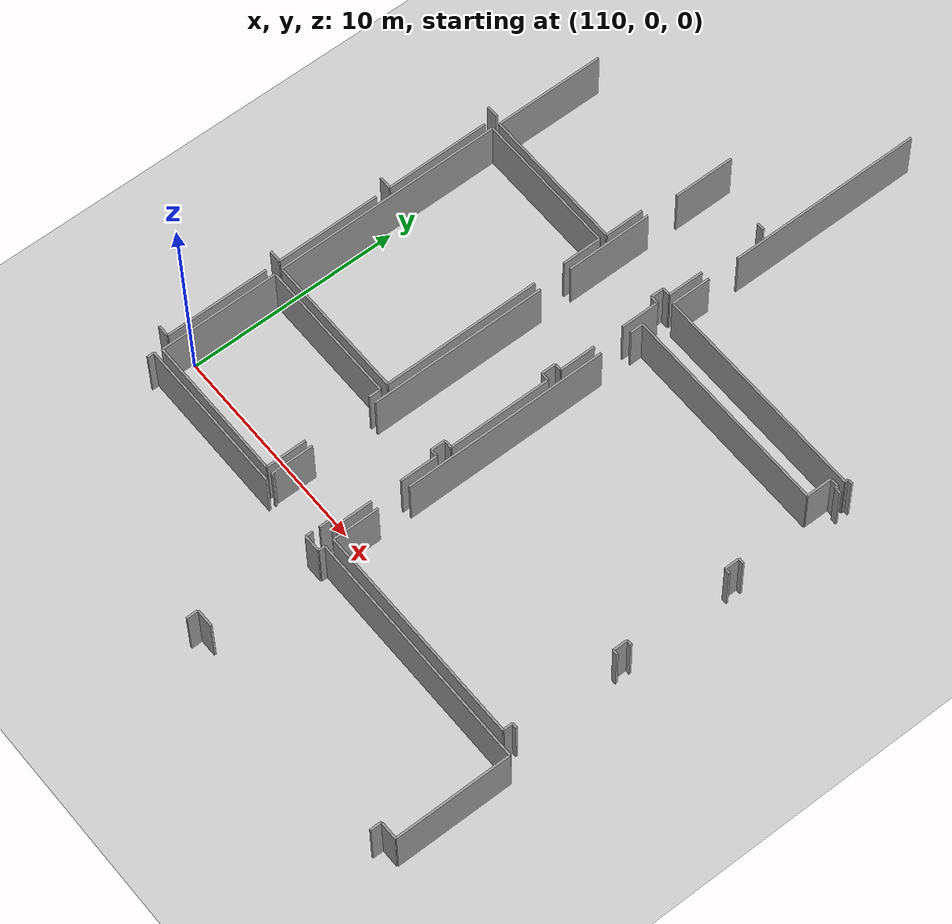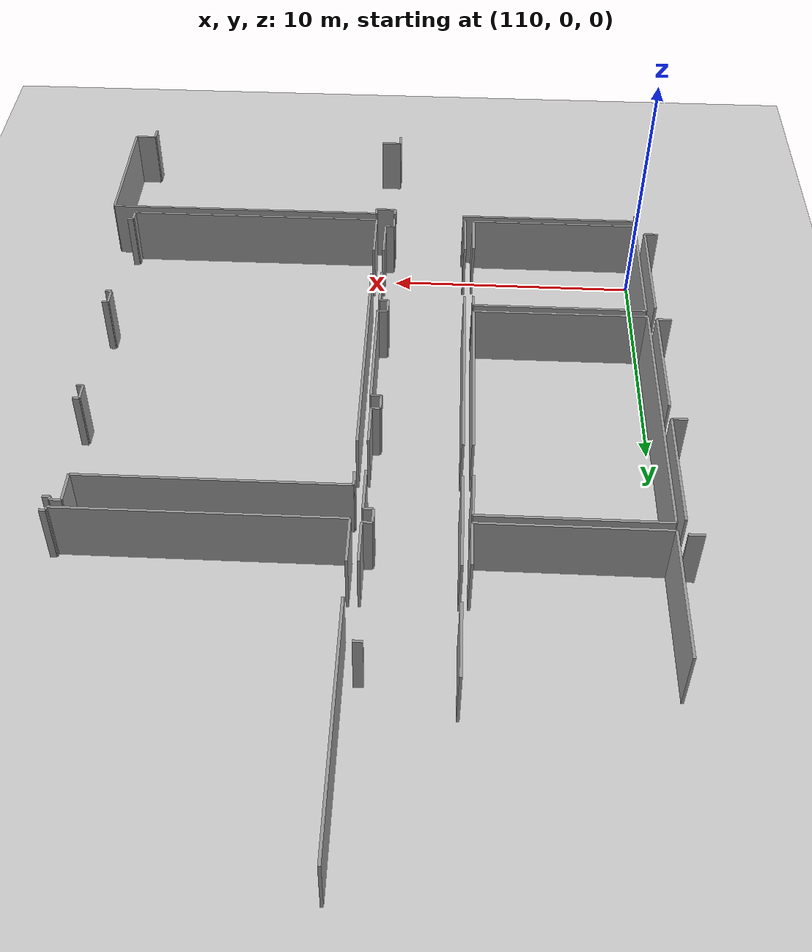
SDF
<sdf version="1.6">
 <world name="default">
  <model name="ground_plane">
   <static>1</static>
   <link name="link">
    <collision name="collision">
     <geometry><plane><normal>0 0 1</normal><size>100 100</size></plane></geometry>
     <surface><friction><ode><mu>100</mu><mu2>50</mu2></ode></friction></surface>
    </collision>
    <visual name="visual">
     <cast_shadows>0</cast_shadows>
     <geometry><plane><normal>0 0 1</normal><size>100 100</size></plane></geometry>
     <material>
      <script><uri>file://media/materials/scripts/gazebo.material</uri><name>Gazebo/Grey</name></script>
     </material>
    </visual>
   </link>
  </model>
  <model name="50015847">
   <static>1</static>
   <link name="Wall_630">
    <collision name="Wall_630_Collision">
     <geometry><box><size>4.94457721056 0.1 2.5</size></box></geometry>
     <pose>2.47228860528 0 1.25 0 0 0</pose>
    </collision>
    <visual name="Wall_630_Visual">
     <pose>2.47228860528 0 1.25 0 0 0</pose>
     <geometry><box><size>4.94457721056 0.1 2.5</size></box></geometry>
     <material>
      <script><uri>file://media/materials/scripts/gazebo.material</uri><name>Gazebo/Grey</name></script>
      <ambient>1 1 1 1</ambient>
     </material>
    </visual>
    <pose>241.810138811 -28.5127370723 0 0 0 -1.57079632679</pose>
   </link>
   <link name="Wall_631">
    <collision name="Wall_631_Collision">
     <geometry><box><size>0.59744750089 0.1 2.5</size></box></geometry>
     <pose>0.298723750445 0 1.25 0 0 0</pose>
    </collision>
    <visual name="Wall_631_Visual">
     <pose>0.298723750445 0 1.25 0 0 0</pose>
     <geometry><box><size>0.59744750089 0.1 2.5</size></box></geometry>
     <material>
      <script><uri>file://media/materials/scripts/gazebo.material</uri><name>Gazebo/Grey</name></script>
      <ambient>1 1 1 1</ambient>
     </material>
    </visual>
    <pose>241.810138811 -33.4573142828 0 0 0 3.14159265359</pose>
   </link>
   <link name="Wall_634">
    <collision name="Wall_634_Collision">
     <geometry><box><size>4.91076422434 0.1 2.5</size></box></geometry>
     <pose>2.45538211217 0 1.25 0 0 0</pose>
    </collision>
    <visual name="Wall_634_Visual">
     <pose>2.45538211217 0 1.25 0 0 0</pose>
     <geometry><box><size>4.91076422434 0.1 2.5</size></box></geometry>
     <material>
      <script><uri>file://media/materials/scripts/gazebo.material</uri><name>Gazebo/Grey</name></script>
      <ambient>1 1 1 1</ambient>
     </material>
    </visual>
    <pose>241.810138811 -34.1645904307 0 0 0 -1.57079632679</pose>
   </link>
   <link name="Wall_635">
    <collision name="Wall_635_Collision">
     <geometry><box><size>0.579651192353 0.1 2.5</size></box></geometry>
     <pose>0.289825596176 0 1.25 0 0 0</pose>
    </collision>
    <visual name="Wall_635_Visual">
     <pose>0.289825596176 0 1.25 0 0 0</pose>
     <geometry><box><size>0.579651192353 0.1 2.5</size></box></geometry>
     <material>
      <script><uri>file://media/materials/scripts/gazebo.material</uri><name>Gazebo/Grey</name></script>
      <ambient>1 1 1 1</ambient>
     </material>
    </visual>
    <pose>241.810138811 -39.075354655 0 0 0 3.14159265359</pose>
   </link>
   <link name="Wall_638">
    <collision name="Wall_638_Collision">
     <geometry><box><size>4.90796766157 0.1 2.5</size></box></geometry>
     <pose>2.45398383078 0 1.25 0 0 0</pose>
    </collision>
    <visual name="Wall_638_Visual">
     <pose>2.45398383078 0 1.25 0 0 0</pose>
     <geometry><box><size>4.90796766157 0.1 2.5</size></box></geometry>
     <material>
      <script><uri>file://media/materials/scripts/gazebo.material</uri><name>Gazebo/Grey</name></script>
      <ambient>1 1 1 1</ambient>
     </material>
    </visual>
    <pose>241.812681141 -39.7602583007 0 0 0 -1.57079632679</pose>
   </link>
   <link name="Wall_639">
    <collision name="Wall_639_Collision">
     <geometry><box><size>0.564397213607 0.1 2.5</size></box></geometry>
     <pose>0.282198606803 0 1.25 0 0 0</pose>
    </collision>
    <visual name="Wall_639_Visual">
     <pose>0.282198606803 0 1.25 0 0 0</pose>
     <geometry><box><size>0.564397213607 0.1 2.5</size></box></geometry>
     <material>
      <script><uri>file://media/materials/scripts/gazebo.material</uri><name>Gazebo/Grey</name></script>
      <ambient>1 1 1 1</ambient>
     </material>
    </visual>
    <pose>241.812681141 -44.6682259623 0 0 0 3.14159265359</pose>
   </link>
   <link name="Wall_713">
    <collision name="Wall_713_Collision">
     <geometry><box><size>0.584735851935 0.1 2.5</size></box></geometry>
     <pose>0.292367925967 0 1.25 0 0 0</pose>
    </collision>
    <visual name="Wall_713_Visual">
     <pose>0.292367925967 0 1.25 0 0 0</pose>
     <geometry><box><size>0.584735851935 0.1 2.5</size></box></geometry>
     <material>
      <script><uri>file://media/materials/scripts/gazebo.material</uri><name>Gazebo/Grey</name></script>
      <ambient>1 1 1 1</ambient>
     </material>
    </visual>
    <pose>241.810138811 -27.8741038287 0 0 0 3.14159265359</pose>
   </link>
   <link name="Wall_739">
    <collision name="Wall_739_Collision">
     <geometry><box><size>5.24279249504 0.1 2.5</size></box></geometry>
     <pose>2.62139624752 0 1.25 0 0 0</pose>
    </collision>
    <visual name="Wall_739_Visual">
     <pose>2.62139624752 0 1.25 0 0 0</pose>
     <geometry><box><size>5.24279249504 0.1 2.5</size></box></geometry>
     <material>
      <script><uri>file://media/materials/scripts/gazebo.material</uri><name>Gazebo/Grey</name></script>
      <ambient>1 1 1 1</ambient>
     </material>
    </visual>
    <pose>242.178776631 -28.0337621396 0 0 0 1.57079632679</pose>
   </link>
   <link name="Wall_742">
    <collision name="Wall_742_Collision">
     <geometry><box><size>1.8528499517 0.1 2.5</size></box></geometry>
     <pose>0.926424975848 0 1.25 0 0 0</pose>
    </collision>
    <visual name="Wall_742_Visual">
     <pose>0.926424975848 0 1.25 0 0 0</pose>
     <geometry><box><size>1.8528499517 0.1 2.5</size></box></geometry>
     <material>
      <script><uri>file://media/materials/scripts/gazebo.material</uri><name>Gazebo/Grey</name></script>
      <ambient>1 1 1 1</ambient>
     </material>
    </visual>
    <pose>249.116794631 -26.1857426145 0 0 0 -1.57079632679</pose>
   </link>
   <link name="Wall_743">
    <collision name="Wall_743_Collision">
     <geometry><box><size>6.93801968123 0.1 2.5</size></box></geometry>
     <pose>3.46900984061 0 1.25 0 0 0</pose>
    </collision>
    <visual name="Wall_743_Visual">
     <pose>3.46900984061 0 1.25 0 0 0</pose>
     <geometry><box><size>6.93801968123 0.1 2.5</size></box></geometry>
     <material>
      <script><uri>file://media/materials/scripts/gazebo.material</uri><name>Gazebo/Grey</name></script>
      <ambient>1 1 1 1</ambient>
     </material>
    </visual>
    <pose>249.116794631 -28.0385925662 0 0 0 3.14089642798</pose>
   </link>
   <link name="Wall_744">
    <collision name="Wall_744_Collision">
     <geometry><box><size>10.8471042864 0.1 2.5</size></box></geometry>
     <pose>5.42355214318 0 1.25 0 0 0</pose>
    </collision>
    <visual name="Wall_744_Visual">
     <pose>5.42355214318 0 1.25 0 0 0</pose>
     <geometry><box><size>10.8471042864 0.1 2.5</size></box></geometry>
     <material>
      <script><uri>file://media/materials/scripts/gazebo.material</uri><name>Gazebo/Grey</name></script>
      <ambient>1 1 1 1</ambient>
     </material>
    </visual>
    <pose>242.160980322 -39.2294198403 0 0 0 1.57079632679</pose>
   </link>
   <link name="Wall_745">
    <collision name="Wall_745_Collision">
     <geometry><box><size>6.92276402095 0.1 2.5</size></box></geometry>
     <pose>3.46138201047 0 1.25 0 0 0</pose>
    </collision>
    <visual name="Wall_745_Visual">
     <pose>3.46138201047 0 1.25 0 0 0</pose>
     <geometry><box><size>6.92276402095 0.1 2.5</size></box></geometry>
     <material>
      <script><uri>file://media/materials/scripts/gazebo.material</uri><name>Gazebo/Grey</name></script>
      <ambient>1 1 1 1</ambient>
     </material>
    </visual>
    <pose>242.160980322 -28.382315554 0 0 0 0.0</pose>
   </link>
   <link name="Wall_746">
    <collision name="Wall_746_Collision">
     <geometry><box><size>1.8673412315 0.1 2.5</size></box></geometry>
     <pose>0.933670615752 0 1.25 0 0 0</pose>
    </collision>
    <visual name="Wall_746_Visual">
     <pose>0.933670615752 0 1.25 0 0 0</pose>
     <geometry><box><size>1.8673412315 0.1 2.5</size></box></geometry>
     <material>
      <script><uri>file://media/materials/scripts/gazebo.material</uri><name>Gazebo/Grey</name></script>
      <ambient>1 1 1 1</ambient>
     </material>
    </visual>
    <pose>249.083744343 -28.382315554 0 0 0 -1.57079632679</pose>
   </link>
   <link name="Wall_747">
    <collision name="Wall_747_Collision">
     <geometry><box><size>7.47266995475 0.1 2.5</size></box></geometry>
     <pose>3.73633497737 0 1.25 0 0 0</pose>
    </collision>
    <visual name="Wall_747_Visual">
     <pose>3.73633497737 0 1.25 0 0 0</pose>
     <geometry><box><size>7.47266995475 0.1 2.5</size></box></geometry>
     <material>
      <script><uri>file://media/materials/scripts/gazebo.material</uri><name>Gazebo/Grey</name></script>
      <ambient>1 1 1 1</ambient>
     </material>
    </visual>
    <pose>249.083744343 -31.7478517313 0 0 0 -1.57079632679</pose>
   </link>
   <link name="Wall_748">
    <collision name="Wall_748_Collision">
     <geometry><box><size>6.92276973955 0.1 2.5</size></box></geometry>
     <pose>3.46138486978 0 1.25 0 0 0</pose>
    </collision>
    <visual name="Wall_748_Visual">
     <pose>3.46138486978 0 1.25 0 0 0</pose>
     <geometry><box><size>6.92276973955 0.1 2.5</size></box></geometry>
     <material>
      <script><uri>file://media/materials/scripts/gazebo.material</uri><name>Gazebo/Grey</name></script>
      <ambient>1 1 1 1</ambient>
     </material>
    </visual>
    <pose>249.083744343 -39.2205216861 0 0 0 -3.14030730725</pose>
   </link>
   <link name="Wall_749">
    <collision name="Wall_749_Collision">
     <geometry><box><size>5.61651497432 0.1 2.5</size></box></geometry>
     <pose>2.80825748716 0 1.25 0 0 0</pose>
    </collision>
    <visual name="Wall_749_Visual">
     <pose>2.80825748716 0 1.25 0 0 0</pose>
     <geometry><box><size>5.61651497432 0.1 2.5</size></box></geometry>
     <material>
      <script><uri>file://media/materials/scripts/gazebo.material</uri><name>Gazebo/Grey</name></script>
      <ambient>1 1 1 1</ambient>
     </material>
    </visual>
    <pose>242.201657599 -45.2051660141 0 0 0 1.57079632679</pose>
   </link>
   <link name="Wall_750">
    <collision name="Wall_750_Collision">
     <geometry><box><size>6.89479839325 0.1 2.5</size></box></geometry>
     <pose>3.44739919662 0 1.25 0 0 0</pose>
    </collision>
    <visual name="Wall_750_Visual">
     <pose>3.44739919662 0 1.25 0 0 0</pose>
     <geometry><box><size>6.89479839325 0.1 2.5</size></box></geometry>
     <material>
      <script><uri>file://media/materials/scripts/gazebo.material</uri><name>Gazebo/Grey</name></script>
      <ambient>1 1 1 1</ambient>
     </material>
    </visual>
    <pose>242.201657599 -39.5886510398 0 0 0 0.0</pose>
   </link>
   <link name="Wall_751">
    <collision name="Wall_751_Collision">
     <geometry><box><size>0.573803833833 0.1 2.5</size></box></geometry>
     <pose>0.286901916917 0 1.25 0 0 0</pose>
    </collision>
    <visual name="Wall_751_Visual">
     <pose>0.286901916917 0 1.25 0 0 0</pose>
     <geometry><box><size>0.573803833833 0.1 2.5</size></box></geometry>
     <material>
      <script><uri>file://media/materials/scripts/gazebo.material</uri><name>Gazebo/Grey</name></script>
      <ambient>1 1 1 1</ambient>
     </material>
    </visual>
    <pose>249.096455992 -39.5886510398 0 0 0 -1.57079632679</pose>
   </link>
   <link name="Wall_752">
    <collision name="Wall_752_Collision">
     <geometry><box><size>1.90674734327 0.1 2.5</size></box></geometry>
     <pose>0.953373671633 0 1.25 0 0 0</pose>
    </collision>
    <visual name="Wall_752_Visual">
     <pose>0.953373671633 0 1.25 0 0 0</pose>
     <geometry><box><size>1.90674734327 0.1 2.5</size></box></geometry>
     <material>
      <script><uri>file://media/materials/scripts/gazebo.material</uri><name>Gazebo/Grey</name></script>
      <ambient>1 1 1 1</ambient>
     </material>
    </visual>
    <pose>249.096455992 -43.3118930188 0 0 0 -1.57079632679</pose>
   </link>
   <link name="Wall_753">
    <collision name="Wall_753_Collision">
     <geometry><box><size>6.89481155954 0.1 2.5</size></box></geometry>
     <pose>3.44740577977 0 1.25 0 0 0</pose>
    </collision>
    <visual name="Wall_753_Visual">
     <pose>3.44740577977 0 1.25 0 0 0</pose>
     <geometry><box><size>6.89481155954 0.1 2.5</size></box></geometry>
     <material>
      <script><uri>file://media/materials/scripts/gazebo.material</uri><name>Gazebo/Grey</name></script>
      <ambient>1 1 1 1</ambient>
     </material>
    </visual>
    <pose>249.096455992 -45.218640362 0 0 0 3.13963837879</pose>
   </link>
   <link name="Wall_754">
    <collision name="Wall_754_Collision">
     <geometry><box><size>10.0803376214 0.1 2.5</size></box></geometry>
     <pose>5.0401688107 0 1.25 0 0 0</pose>
    </collision>
    <visual name="Wall_754_Visual">
     <pose>5.0401688107 0 1.25 0 0 0</pose>
     <geometry><box><size>10.0803376214 0.1 2.5</size></box></geometry>
     <material>
      <script><uri>file://media/materials/scripts/gazebo.material</uri><name>Gazebo/Grey</name></script>
      <ambient>1 1 1 1</ambient>
     </material>
    </visual>
    <pose>253.270961509 -29.5883968068 0 0 0 0.0</pose>
   </link>
   <link name="Wall_755">
    <collision name="Wall_755_Collision">
     <geometry><box><size>1.21574210607 0.1 2.5</size></box></geometry>
     <pose>0.607871053033 0 1.25 0 0 0</pose>
    </collision>
    <visual name="Wall_755_Visual">
     <pose>0.607871053033 0 1.25 0 0 0</pose>
     <geometry><box><size>1.21574210607 0.1 2.5</size></box></geometry>
     <material>
      <script><uri>file://media/materials/scripts/gazebo.material</uri><name>Gazebo/Grey</name></script>
      <ambient>1 1 1 1</ambient>
     </material>
    </visual>
    <pose>263.351299131 -29.5883968068 0 0 0 1.57079632679</pose>
   </link>
   <link name="Wall_756">
    <collision name="Wall_756_Collision">
     <geometry><box><size>0.422026745309 0.1 2.5</size></box></geometry>
     <pose>0.211013372655 0 1.25 0 0 0</pose>
    </collision>
    <visual name="Wall_756_Visual">
     <pose>0.211013372655 0 1.25 0 0 0</pose>
     <geometry><box><size>0.422026745309 0.1 2.5</size></box></geometry>
     <material>
      <script><uri>file://media/materials/scripts/gazebo.material</uri><name>Gazebo/Grey</name></script>
      <ambient>1 1 1 1</ambient>
     </material>
    </visual>
    <pose>263.351299131 -28.3726547008 0 0 0 0.0</pose>
   </link>
   <link name="Wall_757">
    <collision name="Wall_757_Collision">
     <geometry><box><size>0.133726547008 0.1 2.5</size></box></geometry>
     <pose>0.0668632735038 0 1.25 0 0 0</pose>
    </collision>
    <visual name="Wall_757_Visual">
     <pose>0.0668632735038 0 1.25 0 0 0</pose>
     <geometry><box><size>0.133726547008 0.1 2.5</size></box></geometry>
     <material>
      <script><uri>file://media/materials/scripts/gazebo.material</uri><name>Gazebo/Grey</name></script>
      <ambient>1 1 1 1</ambient>
     </material>
    </visual>
    <pose>263.773325876 -28.3726547008 0 0 0 -1.57079632679</pose>
   </link>
   <link name="Wall_758">
    <collision name="Wall_758_Collision">
     <geometry><box><size>0.287283266385 0.1 2.5</size></box></geometry>
     <pose>0.143641633193 0 1.25 0 0 0</pose>
    </collision>
    <visual name="Wall_758_Visual">
     <pose>0.143641633193 0 1.25 0 0 0</pose>
     <geometry><box><size>0.287283266385 0.1 2.5</size></box></geometry>
     <material>
      <script><uri>file://media/materials/scripts/gazebo.material</uri><name>Gazebo/Grey</name></script>
      <ambient>1 1 1 1</ambient>
     </material>
    </visual>
    <pose>263.773325876 -28.5063812478 0 0 0 0.0</pose>
   </link>
   <link name="Wall_759">
    <collision name="Wall_759_Collision">
     <geometry><box><size>0.264402298266 0.1 2.5</size></box></geometry>
     <pose>0.132201149133 0 1.25 0 0 0</pose>
    </collision>
    <visual name="Wall_759_Visual">
     <pose>0.132201149133 0 1.25 0 0 0</pose>
     <geometry><box><size>0.264402298266 0.1 2.5</size></box></geometry>
     <material>
      <script><uri>file://media/materials/scripts/gazebo.material</uri><name>Gazebo/Grey</name></script>
      <ambient>1 1 1 1</ambient>
     </material>
    </visual>
    <pose>264.060609142 -33.4570600498 0 0 0 3.14159265359</pose>
   </link>
   <link name="Wall_760">
    <collision name="Wall_760_Collision">
     <geometry><box><size>0.697615294656 0.1 2.5</size></box></geometry>
     <pose>0.348807647328 0 1.25 0 0 0</pose>
    </collision>
    <visual name="Wall_760_Visual">
     <pose>0.348807647328 0 1.25 0 0 0</pose>
     <geometry><box><size>0.697615294656 0.1 2.5</size></box></geometry>
     <material>
      <script><uri>file://media/materials/scripts/gazebo.material</uri><name>Gazebo/Grey</name></script>
      <ambient>1 1 1 1</ambient>
     </material>
    </visual>
    <pose>263.796206844 -33.4570600498 0 0 0 -1.57079632679</pose>
   </link>
   <link name="Wall_761">
    <collision name="Wall_761_Collision">
     <geometry><box><size>0.256775308893 0.1 2.5</size></box></geometry>
     <pose>0.128387654447 0 1.25 0 0 0</pose>
    </collision>
    <visual name="Wall_761_Visual">
     <pose>0.128387654447 0 1.25 0 0 0</pose>
     <geometry><box><size>0.256775308893 0.1 2.5</size></box></geometry>
     <material>
      <script><uri>file://media/materials/scripts/gazebo.material</uri><name>Gazebo/Grey</name></script>
      <ambient>1 1 1 1</ambient>
     </material>
    </visual>
    <pose>263.796206844 -34.1546753445 0 0 0 0.0</pose>
   </link>
   <link name="Wall_762">
    <collision name="Wall_762_Collision">
     <geometry><box><size>0.246605989729 0.1 2.5</size></box></geometry>
     <pose>0.123302994865 0 1.25 0 0 0</pose>
    </collision>
    <visual name="Wall_762_Visual">
     <pose>0.123302994865 0 1.25 0 0 0</pose>
     <geometry><box><size>0.246605989729 0.1 2.5</size></box></geometry>
     <material>
      <script><uri>file://media/materials/scripts/gazebo.material</uri><name>Gazebo/Grey</name></script>
      <ambient>1 1 1 1</ambient>
     </material>
    </visual>
    <pose>264.052982153 -39.0654395688 0 0 0 3.14159265359</pose>
   </link>
   <link name="Wall_763">
    <collision name="Wall_763_Collision">
     <geometry><box><size>0.682615548889 0.1 2.5</size></box></geometry>
     <pose>0.341307774445 0 1.25 0 0 0</pose>
    </collision>
    <visual name="Wall_763_Visual">
     <pose>0.341307774445 0 1.25 0 0 0</pose>
     <geometry><box><size>0.682615548889 0.1 2.5</size></box></geometry>
     <material>
      <script><uri>file://media/materials/scripts/gazebo.material</uri><name>Gazebo/Grey</name></script>
      <ambient>1 1 1 1</ambient>
     </material>
    </visual>
    <pose>263.806376163 -39.0654395688 0 0 0 -1.57079632679</pose>
   </link>
   <link name="Wall_764">
    <collision name="Wall_764_Collision">
     <geometry><box><size>0.241521330147 0.1 2.5</size></box></geometry>
     <pose>0.120760665073 0 1.25 0 0 0</pose>
    </collision>
    <visual name="Wall_764_Visual">
     <pose>0.120760665073 0 1.25 0 0 0</pose>
     <geometry><box><size>0.241521330147 0.1 2.5</size></box></geometry>
     <material>
      <script><uri>file://media/materials/scripts/gazebo.material</uri><name>Gazebo/Grey</name></script>
      <ambient>1 1 1 1</ambient>
     </material>
    </visual>
    <pose>263.806376163 -39.7480551177 0 0 0 0.0</pose>
   </link>
   <link name="Wall_765">
    <collision name="Wall_765_Collision">
     <geometry><box><size>0.244063659938 0.1 2.5</size></box></geometry>
     <pose>0.122031829969 0 1.25 0 0 0</pose>
    </collision>
    <visual name="Wall_765_Visual">
     <pose>0.122031829969 0 1.25 0 0 0</pose>
     <geometry><box><size>0.244063659938 0.1 2.5</size></box></geometry>
     <material>
      <script><uri>file://media/materials/scripts/gazebo.material</uri><name>Gazebo/Grey</name></script>
      <ambient>1 1 1 1</ambient>
     </material>
    </visual>
    <pose>264.047897493 -44.6768698836 0 0 0 3.14159265359</pose>
   </link>
   <link name="Wall_766">
    <collision name="Wall_766_Collision">
     <geometry><box><size>0.455077032593 0.1 2.5</size></box></geometry>
     <pose>0.227538516296 0 1.25 0 0 0</pose>
    </collision>
    <visual name="Wall_766_Visual">
     <pose>0.227538516296 0 1.25 0 0 0</pose>
     <geometry><box><size>0.455077032593 0.1 2.5</size></box></geometry>
     <material>
      <script><uri>file://media/materials/scripts/gazebo.material</uri><name>Gazebo/Grey</name></script>
      <ambient>1 1 1 1</ambient>
     </material>
    </visual>
    <pose>263.803833833 -44.6768698836 0 0 0 -1.57079632679</pose>
   </link>
   <link name="Wall_767">
    <collision name="Wall_767_Collision">
     <geometry><box><size>10.5150760157 0.1 2.5</size></box></geometry>
     <pose>5.25753800783 0 1.25 0 0 0</pose>
    </collision>
    <visual name="Wall_767_Visual">
     <pose>5.25753800783 0 1.25 0 0 0</pose>
     <geometry><box><size>10.5150760157 0.1 2.5</size></box></geometry>
     <material>
      <script><uri>file://media/materials/scripts/gazebo.material</uri><name>Gazebo/Grey</name></script>
      <ambient>1 1 1 1</ambient>
     </material>
    </visual>
    <pose>263.803833833 -45.1319469162 0 0 0 3.14159265359</pose>
   </link>
   <link name="Wall_768">
    <collision name="Wall_768_Collision">
     <geometry><box><size>2.16809884578 0.1 2.5</size></box></geometry>
     <pose>1.08404942289 0 1.25 0 0 0</pose>
    </collision>
    <visual name="Wall_768_Visual">
     <pose>1.08404942289 0 1.25 0 0 0</pose>
     <geometry><box><size>2.16809884578 0.1 2.5</size></box></geometry>
     <material>
      <script><uri>file://media/materials/scripts/gazebo.material</uri><name>Gazebo/Grey</name></script>
      <ambient>1 1 1 1</ambient>
     </material>
    </visual>
    <pose>253.288757818 -45.1319469162 0 0 0 1.57079632679</pose>
   </link>
   <link name="Wall_769">
    <collision name="Wall_769_Collision">
     <geometry><box><size>9.69314079422 0.1 2.5</size></box></geometry>
     <pose>4.84657039711 0 1.25 0 0 0</pose>
    </collision>
    <visual name="Wall_769_Visual">
     <pose>4.84657039711 0 1.25 0 0 0</pose>
     <geometry><box><size>9.69314079422 0.1 2.5</size></box></geometry>
     <material>
      <script><uri>file://media/materials/scripts/gazebo.material</uri><name>Gazebo/Grey</name></script>
      <ambient>1 1 1 1</ambient>
     </material>
    </visual>
    <pose>253.288757818 -41.4206538872 0 0 0 1.57079632679</pose>
   </link>
   <link name="Wall_770">
    <collision name="Wall_770_Collision">
     <geometry><box><size>0.638881153507 0.1 2.5</size></box></geometry>
     <pose>0.319440576753 0 1.25 0 0 0</pose>
    </collision>
    <visual name="Wall_770_Visual">
     <pose>0.319440576753 0 1.25 0 0 0</pose>
     <geometry><box><size>0.638881153507 0.1 2.5</size></box></geometry>
     <material>
      <script><uri>file://media/materials/scripts/gazebo.material</uri><name>Gazebo/Grey</name></script>
      <ambient>1 1 1 1</ambient>
     </material>
    </visual>
    <pose>253.288757818 -30.2270300503 0 0 0 1.59865535922</pose>
   </link>
   <link name="Wall_783">
    <collision name="Wall_783_Collision">
     <geometry><box><size>0.236436670565 0.1 2.5</size></box></geometry>
     <pose>0.118218335282 0 1.25 0 0 0</pose>
    </collision>
    <visual name="Wall_783_Visual">
     <pose>0.118218335282 0 1.25 0 0 0</pose>
     <geometry><box><size>0.236436670565 0.1 2.5</size></box></geometry>
     <material>
      <script><uri>file://media/materials/scripts/gazebo.material</uri><name>Gazebo/Grey</name></script>
      <ambient>1 1 1 1</ambient>
     </material>
    </visual>
    <pose>264.035185844 -27.8802054202 0 0 0 3.14159265359</pose>
   </link>
   <link name="Wall_784">
    <collision name="Wall_784_Collision">
     <geometry><box><size>0.152031321503 0.1 2.5</size></box></geometry>
     <pose>0.0760156607515 0 1.25 0 0 0</pose>
    </collision>
    <visual name="Wall_784_Visual">
     <pose>0.0760156607515 0 1.25 0 0 0</pose>
     <geometry><box><size>0.152031321503 0.1 2.5</size></box></geometry>
     <material>
      <script><uri>file://media/materials/scripts/gazebo.material</uri><name>Gazebo/Grey</name></script>
      <ambient>1 1 1 1</ambient>
     </material>
    </visual>
    <pose>263.798749174 -27.8802054202 0 0 0 -1.57079632679</pose>
   </link>
   <link name="Wall_785">
    <collision name="Wall_785_Collision">
     <geometry><box><size>10.4972797071 0.1 2.5</size></box></geometry>
     <pose>5.24863985356 0 1.25 0 0 0</pose>
    </collision>
    <visual name="Wall_785_Visual">
     <pose>5.24863985356 0 1.25 0 0 0</pose>
     <geometry><box><size>10.4972797071 0.1 2.5</size></box></geometry>
     <material>
      <script><uri>file://media/materials/scripts/gazebo.material</uri><name>Gazebo/Grey</name></script>
      <ambient>1 1 1 1</ambient>
     </material>
    </visual>
    <pose>263.798749174 -28.0322367418 0 0 0 3.14159265359</pose>
   </link>
   <link name="Wall_786">
    <collision name="Wall_786_Collision">
     <geometry><box><size>1.88157827833 0.1 2.5</size></box></geometry>
     <pose>0.940789139167 0 1.25 0 0 0</pose>
    </collision>
    <visual name="Wall_786_Visual">
     <pose>0.940789139167 0 1.25 0 0 0</pose>
     <geometry><box><size>1.88157827833 0.1 2.5</size></box></geometry>
     <material>
      <script><uri>file://media/materials/scripts/gazebo.material</uri><name>Gazebo/Grey</name></script>
      <ambient>1 1 1 1</ambient>
     </material>
    </visual>
    <pose>253.301469467 -28.0322367418 0 0 0 1.57079632679</pose>
   </link>
   <link name="Wall_787">
    <collision name="Wall_787_Collision">
     <geometry><box><size>9.31560482026 0.1 2.5</size></box></geometry>
     <pose>4.65780241013 0 1.25 0 0 0</pose>
    </collision>
    <visual name="Wall_787_Visual">
     <pose>4.65780241013 0 1.25 0 0 0</pose>
     <geometry><box><size>9.31560482026 0.1 2.5</size></box></geometry>
     <material>
      <script><uri>file://media/materials/scripts/gazebo.material</uri><name>Gazebo/Grey</name></script>
      <ambient>1 1 1 1</ambient>
     </material>
    </visual>
    <pose>253.301469467 -24.6389891697 0 0 0 1.57079632679</pose>
   </link>
   <link name="Wall_817">
    <collision name="Wall_817_Collision">
     <geometry><box><size>0.355926170743 0.1 2.5</size></box></geometry>
     <pose>0.177963085371 0 1.25 0 0 0</pose>
    </collision>
    <visual name="Wall_817_Visual">
     <pose>0.177963085371 0 1.25 0 0 0</pose>
     <geometry><box><size>0.355926170743 0.1 2.5</size></box></geometry>
     <material>
      <script><uri>file://media/materials/scripts/gazebo.material</uri><name>Gazebo/Grey</name></script>
      <ambient>1 1 1 1</ambient>
     </material>
    </visual>
    <pose>252.538770529 -22.919357299 0 0 0 0.0</pose>
   </link>
   <link name="Wall_819">
    <collision name="Wall_819_Collision">
     <geometry><box><size>1.70361519296 0.1 2.5</size></box></geometry>
     <pose>0.851807596481 0 1.25 0 0 0</pose>
    </collision>
    <visual name="Wall_819_Visual">
     <pose>0.851807596481 0 1.25 0 0 0</pose>
     <geometry><box><size>1.70361519296 0.1 2.5</size></box></geometry>
     <material>
      <script><uri>file://media/materials/scripts/gazebo.material</uri><name>Gazebo/Grey</name></script>
      <ambient>1 1 1 1</ambient>
     </material>
    </visual>
    <pose>252.8946967 -26.1773529262 0 0 0 -1.57079632679</pose>
   </link>
   <link name="Wall_820">
    <collision name="Wall_820_Collision">
     <geometry><box><size>0.378807138862 0.1 2.5</size></box></geometry>
     <pose>0.189403569431 0 1.25 0 0 0</pose>
    </collision>
    <visual name="Wall_820_Visual">
     <pose>0.189403569431 0 1.25 0 0 0</pose>
     <geometry><box><size>0.378807138862 0.1 2.5</size></box></geometry>
     <material>
      <script><uri>file://media/materials/scripts/gazebo.material</uri><name>Gazebo/Grey</name></script>
      <ambient>1 1 1 1</ambient>
     </material>
    </visual>
    <pose>252.8946967 -27.8809681192 0 0 0 3.14159265359</pose>
   </link>
   <link name="Wall_821">
    <collision name="Wall_821_Collision">
     <geometry><box><size>0.615243809427 0.1 2.5</size></box></geometry>
     <pose>0.307621904713 0 1.25 0 0 0</pose>
    </collision>
    <visual name="Wall_821_Visual">
     <pose>0.307621904713 0 1.25 0 0 0</pose>
     <geometry><box><size>0.615243809427 0.1 2.5</size></box></geometry>
     <material>
      <script><uri>file://media/materials/scripts/gazebo.material</uri><name>Gazebo/Grey</name></script>
      <ambient>1 1 1 1</ambient>
     </material>
    </visual>
    <pose>252.515889561 -27.8809681192 0 0 0 -1.57079632679</pose>
   </link>
   <link name="Wall_822">
    <collision name="Wall_822_Collision">
     <geometry><box><size>0.363553160116 0.1 2.5</size></box></geometry>
     <pose>0.181776580058 0 1.25 0 0 0</pose>
    </collision>
    <visual name="Wall_822_Visual">
     <pose>0.181776580058 0 1.25 0 0 0</pose>
     <geometry><box><size>0.363553160116 0.1 2.5</size></box></geometry>
     <material>
      <script><uri>file://media/materials/scripts/gazebo.material</uri><name>Gazebo/Grey</name></script>
      <ambient>1 1 1 1</ambient>
     </material>
    </visual>
    <pose>252.515889561 -28.4962119286 0 0 0 0.0</pose>
   </link>
   <link name="Wall_823">
    <collision name="Wall_823_Collision">
     <geometry><box><size>1.80556261758 0.1 2.5</size></box></geometry>
     <pose>0.902781308791 0 1.25 0 0 0</pose>
    </collision>
    <visual name="Wall_823_Visual">
     <pose>0.902781308791 0 1.25 0 0 0</pose>
     <geometry><box><size>1.80556261758 0.1 2.5</size></box></geometry>
     <material>
      <script><uri>file://media/materials/scripts/gazebo.material</uri><name>Gazebo/Grey</name></script>
      <ambient>1 1 1 1</ambient>
     </material>
    </visual>
    <pose>252.879442721 -28.4962119286 0 0 0 -1.57079632679</pose>
   </link>
   <link name="Wall_824">
    <collision name="Wall_824_Collision">
     <geometry><box><size>1.70361519296 0.1 2.5</size></box></geometry>
     <pose>0.851807596481 0 1.25 0 0 0</pose>
    </collision>
    <visual name="Wall_824_Visual">
     <pose>0.851807596481 0 1.25 0 0 0</pose>
     <geometry><box><size>1.70361519296 0.1 2.5</size></box></geometry>
     <material>
      <script><uri>file://media/materials/scripts/gazebo.material</uri><name>Gazebo/Grey</name></script>
      <ambient>1 1 1 1</ambient>
     </material>
    </visual>
    <pose>252.879442721 -31.7707326994 0 0 0 -1.57079632679</pose>
   </link>
   <link name="Wall_825">
    <collision name="Wall_825_Collision">
     <geometry><box><size>0.340672191997 0.1 2.5</size></box></geometry>
     <pose>0.170336095998 0 1.25 0 0 0</pose>
    </collision>
    <visual name="Wall_825_Visual">
     <pose>0.170336095998 0 1.25 0 0 0</pose>
     <geometry><box><size>0.340672191997 0.1 2.5</size></box></geometry>
     <material>
      <script><uri>file://media/materials/scripts/gazebo.material</uri><name>Gazebo/Grey</name></script>
      <ambient>1 1 1 1</ambient>
     </material>
    </visual>
    <pose>252.879442721 -33.4743478924 0 0 0 3.14159265359</pose>
   </link>
   <link name="Wall_826">
    <collision name="Wall_826_Collision">
     <geometry><box><size>0.681598616973 0.1 2.5</size></box></geometry>
     <pose>0.340799308486 0 1.25 0 0 0</pose>
    </collision>
    <visual name="Wall_826_Visual">
     <pose>0.340799308486 0 1.25 0 0 0</pose>
     <geometry><box><size>0.681598616973 0.1 2.5</size></box></geometry>
     <material>
      <script><uri>file://media/materials/scripts/gazebo.material</uri><name>Gazebo/Grey</name></script>
      <ambient>1 1 1 1</ambient>
     </material>
    </visual>
    <pose>252.538770529 -33.4743478924 0 0 0 -1.57079632679</pose>
   </link>
   <link name="Wall_827">
    <collision name="Wall_827_Collision">
     <geometry><box><size>0.383891798444 0.1 2.5</size></box></geometry>
     <pose>0.191945899222 0 1.25 0 0 0</pose>
    </collision>
    <visual name="Wall_827_Visual">
     <pose>0.191945899222 0 1.25 0 0 0</pose>
     <geometry><box><size>0.383891798444 0.1 2.5</size></box></geometry>
     <material>
      <script><uri>file://media/materials/scripts/gazebo.material</uri><name>Gazebo/Grey</name></script>
      <ambient>1 1 1 1</ambient>
     </material>
    </visual>
    <pose>252.538770529 -34.1559465094 0 0 0 0.0</pose>
   </link>
   <link name="Wall_828">
    <collision name="Wall_828_Collision">
     <geometry><box><size>4.89423908069 0.1 2.5</size></box></geometry>
     <pose>2.44711954035 0 1.25 0 0 0</pose>
    </collision>
    <visual name="Wall_828_Visual">
     <pose>2.44711954035 0 1.25 0 0 0</pose>
     <geometry><box><size>4.89423908069 0.1 2.5</size></box></geometry>
     <material>
      <script><uri>file://media/materials/scripts/gazebo.material</uri><name>Gazebo/Grey</name></script>
      <ambient>1 1 1 1</ambient>
     </material>
    </visual>
    <pose>252.922662328 -34.1559465094 0 0 0 -1.57079632679</pose>
   </link>
   <link name="Wall_829">
    <collision name="Wall_829_Collision">
     <geometry><box><size>0.388976458026 0.1 2.5</size></box></geometry>
     <pose>0.194488229013 0 1.25 0 0 0</pose>
    </collision>
    <visual name="Wall_829_Visual">
     <pose>0.194488229013 0 1.25 0 0 0</pose>
     <geometry><box><size>0.388976458026 0.1 2.5</size></box></geometry>
     <material>
      <script><uri>file://media/materials/scripts/gazebo.material</uri><name>Gazebo/Grey</name></script>
      <ambient>1 1 1 1</ambient>
     </material>
    </visual>
    <pose>252.922662328 -39.0501855901 0 0 0 3.14159265359</pose>
   </link>
   <link name="Wall_830">
    <collision name="Wall_830_Collision">
     <geometry><box><size>0.684903645701 0.1 2.5</size></box></geometry>
     <pose>0.34245182285 0 1.25 0 0 0</pose>
    </collision>
    <visual name="Wall_830_Visual">
     <pose>0.34245182285 0 1.25 0 0 0</pose>
     <geometry><box><size>0.684903645701 0.1 2.5</size></box></geometry>
     <material>
      <script><uri>file://media/materials/scripts/gazebo.material</uri><name>Gazebo/Grey</name></script>
      <ambient>1 1 1 1</ambient>
     </material>
    </visual>
    <pose>252.53368587 -39.0501855901 0 0 0 -1.57079632679</pose>
   </link>
   <link name="Wall_831">
    <collision name="Wall_831_Collision">
     <geometry><box><size>0.345756851579 0.1 2.5</size></box></geometry>
     <pose>0.172878425789 0 1.25 0 0 0</pose>
    </collision>
    <visual name="Wall_831_Visual">
     <pose>0.172878425789 0 1.25 0 0 0</pose>
     <geometry><box><size>0.345756851579 0.1 2.5</size></box></geometry>
     <material>
      <script><uri>file://media/materials/scripts/gazebo.material</uri><name>Gazebo/Grey</name></script>
      <ambient>1 1 1 1</ambient>
     </material>
    </visual>
    <pose>252.53368587 -39.7350892358 0 0 0 0.0</pose>
   </link>
   <link name="Wall_832">
    <collision name="Wall_832_Collision">
     <geometry><box><size>1.77886815478 0.1 2.5</size></box></geometry>
     <pose>0.889434077389 0 1.25 0 0 0</pose>
    </collision>
    <visual name="Wall_832_Visual">
     <pose>0.889434077389 0 1.25 0 0 0</pose>
     <geometry><box><size>1.77886815478 0.1 2.5</size></box></geometry>
     <material>
      <script><uri>file://media/materials/scripts/gazebo.material</uri><name>Gazebo/Grey</name></script>
      <ambient>1 1 1 1</ambient>
     </material>
    </visual>
    <pose>252.879442721 -39.7350892358 0 0 0 -1.57079632679</pose>
   </link>
   <link name="Wall_833">
    <collision name="Wall_833_Collision">
     <geometry><box><size>1.69853053338 0.1 2.5</size></box></geometry>
     <pose>0.84926526669 0 1.25 0 0 0</pose>
    </collision>
    <visual name="Wall_833_Visual">
     <pose>0.84926526669 0 1.25 0 0 0</pose>
     <geometry><box><size>1.69853053338 0.1 2.5</size></box></geometry>
     <material>
      <script><uri>file://media/materials/scripts/gazebo.material</uri><name>Gazebo/Grey</name></script>
      <ambient>1 1 1 1</ambient>
     </material>
    </visual>
    <pose>252.879442721 -42.9783393502 0 0 0 -1.57079632679</pose>
   </link>
   <link name="Wall_834">
    <collision name="Wall_834_Collision">
     <geometry><box><size>0.358468500534 0.1 2.5</size></box></geometry>
     <pose>0.179234250267 0 1.25 0 0 0</pose>
    </collision>
    <visual name="Wall_834_Visual">
     <pose>0.179234250267 0 1.25 0 0 0</pose>
     <geometry><box><size>0.358468500534 0.1 2.5</size></box></geometry>
     <material>
      <script><uri>file://media/materials/scripts/gazebo.material</uri><name>Gazebo/Grey</name></script>
      <ambient>1 1 1 1</ambient>
     </material>
    </visual>
    <pose>252.879442721 -44.6768698836 0 0 0 3.14159265359</pose>
   </link>
   <link name="Wall_835">
    <collision name="Wall_835_Collision">
     <geometry><box><size>0.561600650836 0.1 2.5</size></box></geometry>
     <pose>0.280800325418 0 1.25 0 0 0</pose>
    </collision>
    <visual name="Wall_835_Visual">
     <pose>0.280800325418 0 1.25 0 0 0</pose>
     <geometry><box><size>0.561600650836 0.1 2.5</size></box></geometry>
     <material>
      <script><uri>file://media/materials/scripts/gazebo.material</uri><name>Gazebo/Grey</name></script>
      <ambient>1 1 1 1</ambient>
     </material>
    </visual>
    <pose>252.520974221 -44.6768698836 0 0 0 -1.57079632679</pose>
   </link>
   <link name="Wall_836">
    <collision name="Wall_836_Collision">
     <geometry><box><size>0.114404840596 0.1 2.5</size></box></geometry>
     <pose>0.057202420298 0 1.25 0 0 0</pose>
    </collision>
    <visual name="Wall_836_Visual">
     <pose>0.057202420298 0 1.25 0 0 0</pose>
     <geometry><box><size>0.114404840596 0.1 2.5</size></box></geometry>
     <material>
      <script><uri>file://media/materials/scripts/gazebo.material</uri><name>Gazebo/Grey</name></script>
      <ambient>1 1 1 1</ambient>
     </material>
    </visual>
    <pose>249.566787004 -45.2384705344 0 0 0 3.14159265359</pose>
   </link>
   <link name="Wall_837">
    <collision name="Wall_837_Collision">
     <geometry><box><size>1.99903391468 0.1 2.5</size></box></geometry>
     <pose>0.99951695734 0 1.25 0 0 0</pose>
    </collision>
    <visual name="Wall_837_Visual">
     <pose>0.99951695734 0 1.25 0 0 0</pose>
     <geometry><box><size>1.99903391468 0.1 2.5</size></box></geometry>
     <material>
      <script><uri>file://media/materials/scripts/gazebo.material</uri><name>Gazebo/Grey</name></script>
      <ambient>1 1 1 1</ambient>
     </material>
    </visual>
    <pose>249.452382163 -45.2384705344 0 0 0 1.57079632679</pose>
   </link>
   <link name="Wall_838">
    <collision name="Wall_838_Collision">
     <geometry><box><size>8.39731529974 0.1 2.5</size></box></geometry>
     <pose>4.19865764987 0 1.25 0 0 0</pose>
    </collision>
    <visual name="Wall_838_Visual">
     <pose>4.19865764987 0 1.25 0 0 0</pose>
     <geometry><box><size>8.39731529974 0.1 2.5</size></box></geometry>
     <material>
      <script><uri>file://media/materials/scripts/gazebo.material</uri><name>Gazebo/Grey</name></script>
      <ambient>1 1 1 1</ambient>
     </material>
    </visual>
    <pose>249.452382163 -40.1288961204 0 0 0 1.57079632679</pose>
   </link>
   <link name="Wall_839">
    <collision name="Wall_839_Collision">
     <geometry><box><size>4.0595922103 0.1 2.5</size></box></geometry>
     <pose>2.02979610515 0 1.25 0 0 0</pose>
    </collision>
    <visual name="Wall_839_Visual">
     <pose>2.02979610515 0 1.25 0 0 0</pose>
     <geometry><box><size>4.0595922103 0.1 2.5</size></box></geometry>
     <material>
      <script><uri>file://media/materials/scripts/gazebo.material</uri><name>Gazebo/Grey</name></script>
      <ambient>1 1 1 1</ambient>
     </material>
    </visual>
    <pose>249.452382163 -30.2077083439 0 0 0 1.57079632679</pose>
   </link>
   <link name="Wall_840">
    <collision name="Wall_840_Collision">
     <geometry><box><size>2.89596786495 0.1 2.5</size></box></geometry>
     <pose>1.44798393248 0 1.25 0 0 0</pose>
    </collision>
    <visual name="Wall_840_Visual">
     <pose>1.44798393248 0 1.25 0 0 0</pose>
     <geometry><box><size>2.89596786495 0.1 2.5</size></box></geometry>
     <material>
      <script><uri>file://media/materials/scripts/gazebo.material</uri><name>Gazebo/Grey</name></script>
      <ambient>1 1 1 1</ambient>
     </material>
    </visual>
    <pose>249.452382163 -24.6260232877 0 0 0 1.57079632679</pose>
   </link>
   <link name="Wall_1172">
    <collision name="Wall_1172_Collision">
     <geometry><box><size>0.340672191997 0.1 2.5</size></box></geometry>
     <pose>0.170336095998 0 1.25 0 0 0</pose>
    </collision>
    <visual name="Wall_1172_Visual">
     <pose>0.170336095998 0 1.25 0 0 0</pose>
     <geometry><box><size>0.340672191997 0.1 2.5</size></box></geometry>
     <material>
      <script><uri>file://media/materials/scripts/gazebo.material</uri><name>Gazebo/Grey</name></script>
      <ambient>1 1 1 1</ambient>
     </material>
    </visual>
    <pose>242.125387705 -45.8992220471 0 0 0 1.57079632679</pose>
   </link>
   <link name="Wall_1173">
    <collision name="Wall_1173_Collision">
     <geometry><box><size>7.43885696853 0.1 2.5</size></box></geometry>
     <pose>3.71942848426 0 1.25 0 0 0</pose>
    </collision>
    <visual name="Wall_1173_Visual">
     <pose>3.71942848426 0 1.25 0 0 0</pose>
     <geometry><box><size>7.43885696853 0.1 2.5</size></box></geometry>
     <material>
      <script><uri>file://media/materials/scripts/gazebo.material</uri><name>Gazebo/Grey</name></script>
      <ambient>1 1 1 1</ambient>
     </material>
    </visual>
    <pose>242.125387705 -45.5585498551 0 0 0 0.0</pose>
   </link>
   <link name="Wall_1174">
    <collision name="Wall_1174_Collision">
     <geometry><box><size>0.332282503686 0.1 2.5</size></box></geometry>
     <pose>0.166141251843 0 1.25 0 0 0</pose>
    </collision>
    <visual name="Wall_1174_Visual">
     <pose>0.166141251843 0 1.25 0 0 0</pose>
     <geometry><box><size>0.332282503686 0.1 2.5</size></box></geometry>
     <material>
      <script><uri>file://media/materials/scripts/gazebo.material</uri><name>Gazebo/Grey</name></script>
      <ambient>1 1 1 1</ambient>
     </material>
    </visual>
    <pose>252.508262572 -45.5585498551 0 0 0 -1.57079632679</pose>
   </link>
   <link name="Wall_1175">
    <collision name="Wall_1175_Collision">
     <geometry><box><size>0.808460873545 0.1 2.5</size></box></geometry>
     <pose>0.404230436772 0 1.25 0 0 0</pose>
    </collision>
    <visual name="Wall_1175_Visual">
     <pose>0.404230436772 0 1.25 0 0 0</pose>
     <geometry><box><size>0.808460873545 0.1 2.5</size></box></geometry>
     <material>
      <script><uri>file://media/materials/scripts/gazebo.material</uri><name>Gazebo/Grey</name></script>
      <ambient>1 1 1 1</ambient>
     </material>
    </visual>
    <pose>252.508262572 -45.8908323588 0 0 0 0.0</pose>
   </link>
   <link name="Wall_1176">
    <collision name="Wall_1176_Collision">
     <geometry><box><size>0.310672700463 0.1 2.5</size></box></geometry>
     <pose>0.155336350231 0 1.25 0 0 0</pose>
    </collision>
    <visual name="Wall_1176_Visual">
     <pose>0.155336350231 0 1.25 0 0 0</pose>
     <geometry><box><size>0.310672700463 0.1 2.5</size></box></geometry>
     <material>
      <script><uri>file://media/materials/scripts/gazebo.material</uri><name>Gazebo/Grey</name></script>
      <ambient>1 1 1 1</ambient>
     </material>
    </visual>
    <pose>253.316723445 -45.8908323588 0 0 0 1.57079632679</pose>
   </link>
   <link name="Wall_1177">
    <collision name="Wall_1177_Collision">
     <geometry><box><size>11.4659073575 0.1 2.5</size></box></geometry>
     <pose>5.73295367875 0 1.25 0 0 0</pose>
    </collision>
    <visual name="Wall_1177_Visual">
     <pose>5.73295367875 0 1.25 0 0 0</pose>
     <geometry><box><size>11.4659073575 0.1 2.5</size></box></geometry>
     <material>
      <script><uri>file://media/materials/scripts/gazebo.material</uri><name>Gazebo/Grey</name></script>
      <ambient>1 1 1 1</ambient>
     </material>
    </visual>
    <pose>253.316723445 -45.5801596583 0 0 0 0.0</pose>
   </link>
   <link name="Wall_1178">
    <collision name="Wall_1178_Collision">
     <geometry><box><size>5.45558549855 0.1 2.5</size></box></geometry>
     <pose>2.72779274928 0 1.25 0 0 0</pose>
    </collision>
    <visual name="Wall_1178_Visual">
     <pose>2.72779274928 0 1.25 0 0 0</pose>
     <geometry><box><size>5.45558549855 0.1 2.5</size></box></geometry>
     <material>
      <script><uri>file://media/materials/scripts/gazebo.material</uri><name>Gazebo/Grey</name></script>
      <ambient>1 1 1 1</ambient>
     </material>
    </visual>
    <pose>264.782630803 -45.5801596583 0 0 0 -1.57079632679</pose>
   </link>
   <link name="Wall_1179">
    <collision name="Wall_1179_Collision">
     <geometry><box><size>0.861849799156 0.1 2.5</size></box></geometry>
     <pose>0.430924899578 0 1.25 0 0 0</pose>
    </collision>
    <visual name="Wall_1179_Visual">
     <pose>0.430924899578 0 1.25 0 0 0</pose>
     <geometry><box><size>0.861849799156 0.1 2.5</size></box></geometry>
     <material>
      <script><uri>file://media/materials/scripts/gazebo.material</uri><name>Gazebo/Grey</name></script>
      <ambient>1 1 1 1</ambient>
     </material>
    </visual>
    <pose>264.782630803 -51.0357451569 0 0 0 3.14159265359</pose>
   </link>
   <link name="Wall_1180">
    <collision name="Wall_1180_Collision">
     <geometry><box><size>0.532109625261 0.1 2.5</size></box></geometry>
     <pose>0.26605481263 0 1.25 0 0 0</pose>
    </collision>
    <visual name="Wall_1180_Visual">
     <pose>0.26605481263 0 1.25 0 0 0</pose>
     <geometry><box><size>0.532109625261 0.1 2.5</size></box></geometry>
     <material>
      <script><uri>file://media/materials/scripts/gazebo.material</uri><name>Gazebo/Grey</name></script>
      <ambient>1 1 1 1</ambient>
     </material>
    </visual>
    <pose>263.920781004 -51.0357451569 0 0 0 -1.57079632679</pose>
   </link>
   <link name="Wall_1185">
    <collision name="Wall_1185_Collision">
     <geometry><box><size>0.838968831037 0.1 2.5</size></box></geometry>
     <pose>0.419484415518 0 1.25 0 0 0</pose>
    </collision>
    <visual name="Wall_1185_Visual">
     <pose>0.419484415518 0 1.25 0 0 0</pose>
     <geometry><box><size>0.838968831037 0.1 2.5</size></box></geometry>
     <material>
      <script><uri>file://media/materials/scripts/gazebo.material</uri><name>Gazebo/Grey</name></script>
      <ambient>1 1 1 1</ambient>
     </material>
    </visual>
    <pose>253.324350435 -51.0652361824 0 0 0 3.14159265359</pose>
   </link>
   <link name="Wall_1186">
    <collision name="Wall_1186_Collision">
     <geometry><box><size>0.54939746784 0.1 2.5</size></box></geometry>
     <pose>0.27469873392 0 1.25 0 0 0</pose>
    </collision>
    <visual name="Wall_1186_Visual">
     <pose>0.27469873392 0 1.25 0 0 0</pose>
     <geometry><box><size>0.54939746784 0.1 2.5</size></box></geometry>
     <material>
      <script><uri>file://media/materials/scripts/gazebo.material</uri><name>Gazebo/Grey</name></script>
      <ambient>1 1 1 1</ambient>
     </material>
    </visual>
    <pose>252.485381604 -51.0652361824 0 0 0 -1.57079632679</pose>
   </link>
   <pose>-132.35 43.9162226064 0 0 0 0</pose>
  </model>
 </world>
</sdf>
